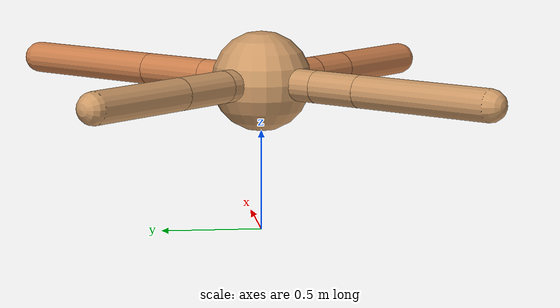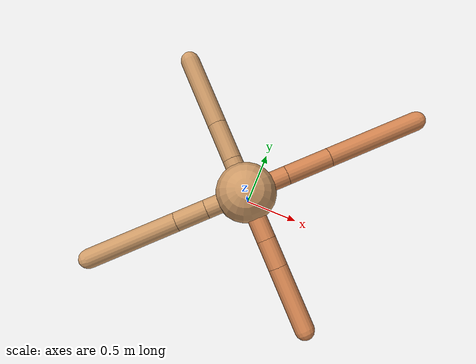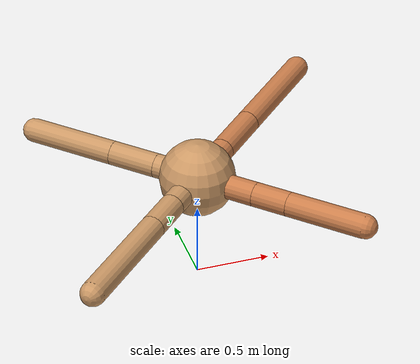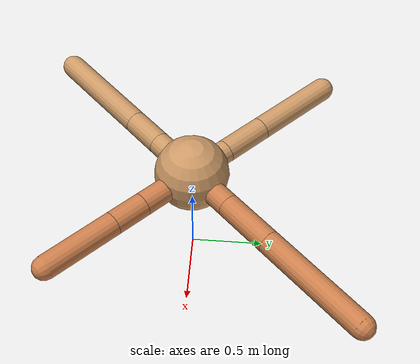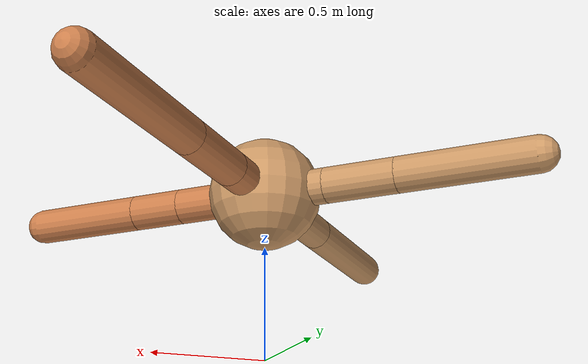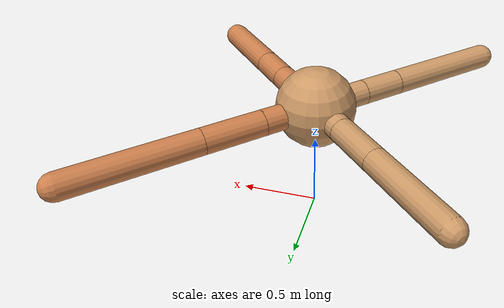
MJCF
<mujoco model="ant">
  <compiler angle="degree" coordinate="local" inertiafromgeom="true" />
  <option integrator="RK4" timestep="0.01" />
  <custom>
    <numeric data="0.0 0.0 0.55 1.0 0.0 0.0 0.0 0.0 1.0 0.0 -1.0 0.0 -1.0 0.0 1.0" name="init_qpos" />
  </custom>
  <default>
    <joint armature="1" damping="1" limited="true" />
    <geom conaffinity="0" condim="3" density="5.0" friction="1.5 0.1 0.1" margin="0.01" rgba="0.8 0.6 0.4 1" />
  </default>
  <worldbody>
    <body name="torso" pos="0 0 0.75">
      <geom name="torso_geom" pos="0 0 0" size="0.25" type="sphere" />

      <body name="front_left_leg" pos="0 0 0">
        <geom fromto="0.0 0.0 0.0 0.25558189833039247 0.25558189833039247 0.0" name="aux_1_geom" size="0.08" type="capsule" rgba=".8 .5 .3 1" />
        <body name="aux_1" pos="0.25558189833039247 0.25558189833039247 0.0">
          <joint axis="0 0 1" name="hip_1" pos="0.0 0.0 0.0" range="-40 40" type="hinge" />
          <geom fromto="0.0 0.0 0.0 0.2669973893145247 0.2669973893145247 0.0" name="left_leg_geom" size="0.08" type="capsule" rgba=".8 .5 .3 1" />
          <body pos="0.2669973893145247 0.2669973893145247 0.0" name="front_left_foot">
            <joint axis="-1 1 0" name="ankle_1" pos="0.0 0.0 0.0" range="30 100" type="hinge" />
            <geom fromto="0.0 0.0 0.0 0.5575476211715894 0.5575476211715894 0.0" name="left_ankle_geom" size="0.08" type="capsule" rgba=".8 .5 .3 1" />
          </body>
        </body>
      </body>
      <body name="front_right_leg" pos="0 0 0">
        <geom fromto="0.0 0.0 0.0 -0.20827095028681028 0.20827095028681028 0.0" name="aux_2_geom" size="0.08" type="capsule" />
        <body name="aux_2" pos="-0.20827095028681028 0.20827095028681028 0.0">
          <joint axis="0 0 1" name="hip_2" pos="0.0 0.0 0.0" range="-40 40" type="hinge" />
          <geom fromto="0.0 0.0 0.0 -0.22830936142781388 0.22830936142781388 0.0" name="right_leg_geom" size="0.08" type="capsule" />
          <body pos="-0.22830936142781388 0.22830936142781388 0.0" name="front_right_foot">
            <joint axis="1 1 0" name="ankle_2" pos="0.0 0.0 0.0" range="-100 -30" type="hinge" />
            <geom fromto="0.0 0.0 0.0 -0.4251291374185382 0.4251291374185382 0.0" name="right_ankle_geom" size="0.08" type="capsule" />
          </body>
        </body>
      </body>
      <body name="left_back_leg" pos="0 0 0">
        <geom fromto="0.0 0.0 0.0 -0.24570373591922168 -0.24570373591922168 0.0" name="aux_3_geom" size="0.08" type="capsule" />
        <body name="aux_3" pos="-0.24570373591922168 -0.24570373591922168 0.0">
          <joint axis="0 0 1" name="hip_3" pos="0.0 0.0 0.0" range="-40 40" type="hinge" />
          <geom fromto="0.0 0.0 0.0 -0.18373004963558326 -0.18373004963558326 0.0" name="back_leg_geom" size="0.08" type="capsule" />
          <body pos="-0.18373004963558326 -0.18373004963558326 0.0" name="left_back_foot">
            <joint axis="-1 1 0" name="ankle_3" pos="0.0 0.0 0.0" range="-100 -30" type="hinge" />
            <geom fromto="0.0 0.0 0.0 -0.5266945532594715 -0.5266945532594715 0.0" name="third_ankle_geom" size="0.08" type="capsule" />
          </body>
        </body>
      </body>
      <body name="right_back_leg" pos="0 0 0">
        <geom fromto="0.0 0.0 0.0 0.2924557429254335 -0.2924557429254335 0.0" name="aux_4_geom" size="0.08" type="capsule" rgba=".8 .5 .3 1" />
        <body name="aux_4" pos="0.2924557429254335 -0.2924557429254335 0.0">
          <joint axis="0 0 1" name="hip_4" pos="0.0 0.0 0.0" range="-40 40" type="hinge" />
          <geom fromto="0.0 0.0 0.0 0.16620697884813718 -0.16620697884813718 0.0" name="rightback_leg_geom" size="0.08" type="capsule" rgba=".8 .5 .3 1" />
          <body pos="0.16620697884813718 -0.16620697884813718 0.0" name="right_back_foot">
            <joint axis="1 1 0" name="ankle_4" pos="0.0 0.0 0.0" range="30 100" type="hinge" />
            <geom fromto="0.0 0.0 0.0 0.366870906172845 -0.366870906172845 0.0" name="fourth_ankle_geom" size="0.08" type="capsule" rgba=".8 .5 .3 1" />
          </body>
        </body>
      </body>
    </body>
  </worldbody>
  <actuator>
    <motor ctrllimited="true" ctrlrange="-1.0 1.0" joint="hip_4" gear="150" />
    <motor ctrllimited="true" ctrlrange="-1.0 1.0" joint="ankle_4" gear="150" />
    <motor ctrllimited="true" ctrlrange="-1.0 1.0" joint="hip_1" gear="150" />
    <motor ctrllimited="true" ctrlrange="-1.0 1.0" joint="ankle_1" gear="150" />
    <motor ctrllimited="true" ctrlrange="-1.0 1.0" joint="hip_2" gear="150" />
    <motor ctrllimited="true" ctrlrange="-1.0 1.0" joint="ankle_2" gear="150" />
    <motor ctrllimited="true" ctrlrange="-1.0 1.0" joint="hip_3" gear="150" />
    <motor ctrllimited="true" ctrlrange="-1.0 1.0" joint="ankle_3" gear="150" />
  </actuator>
</mujoco>
